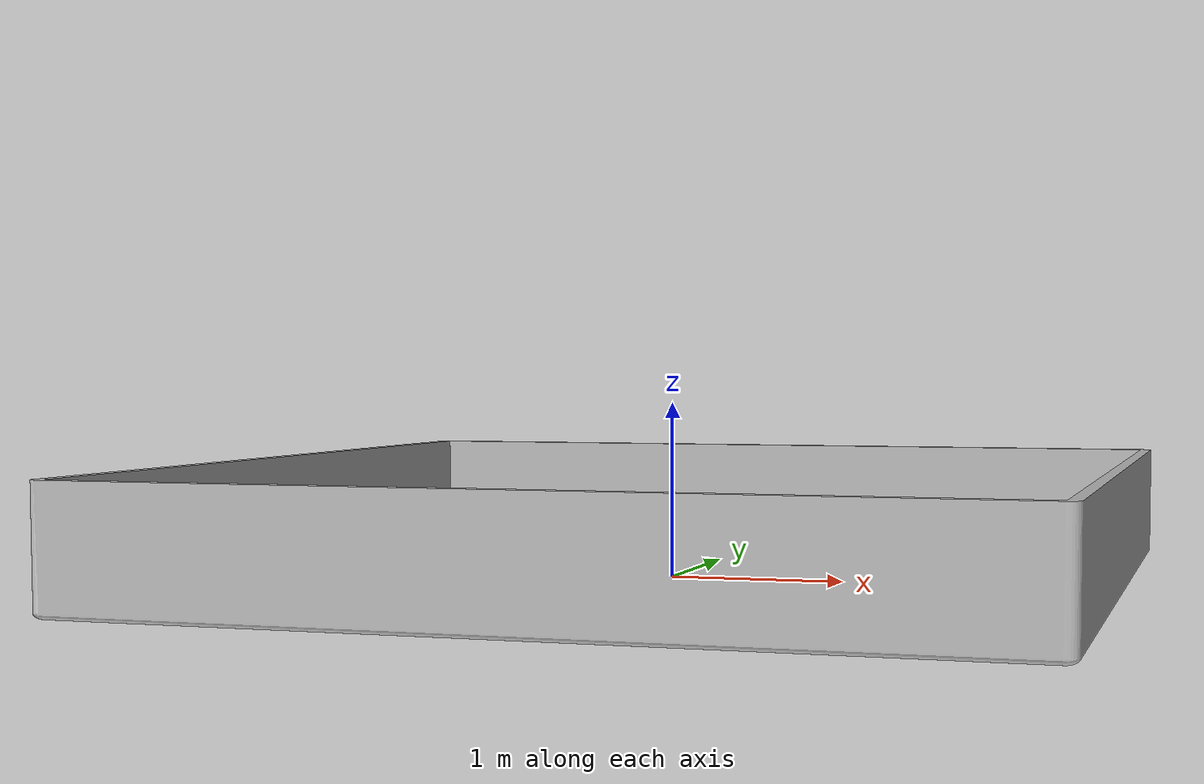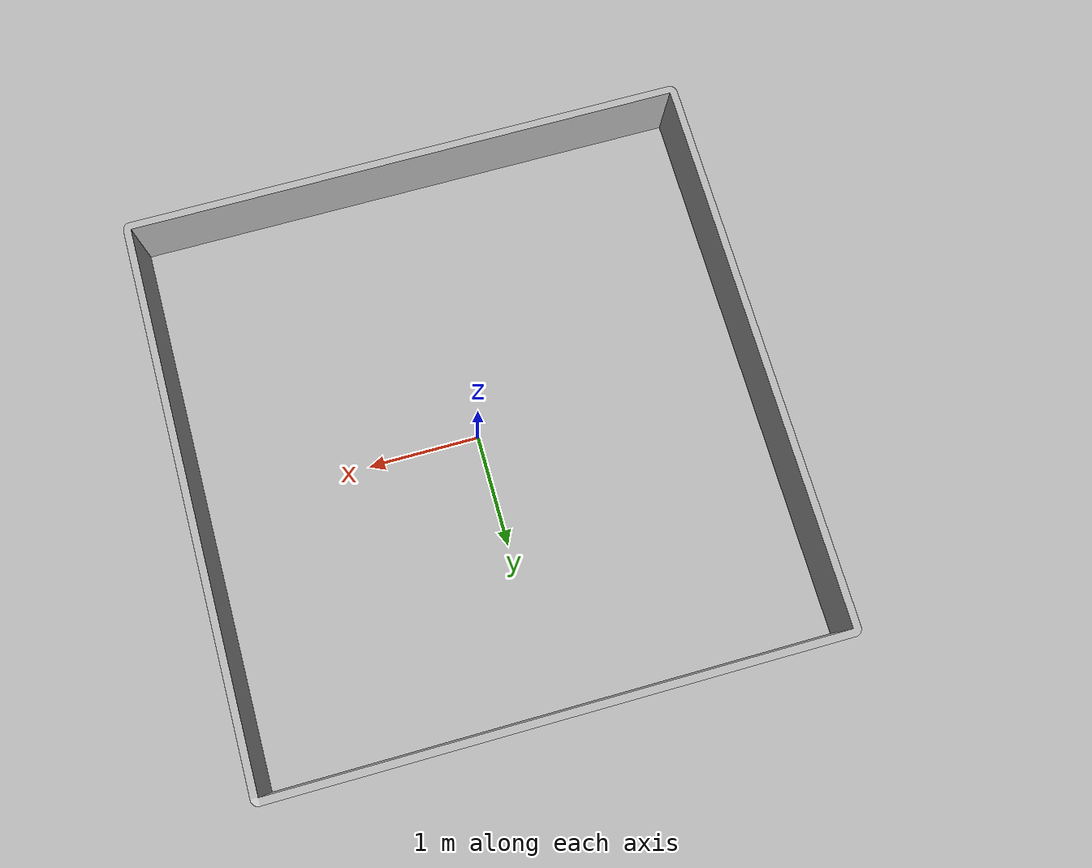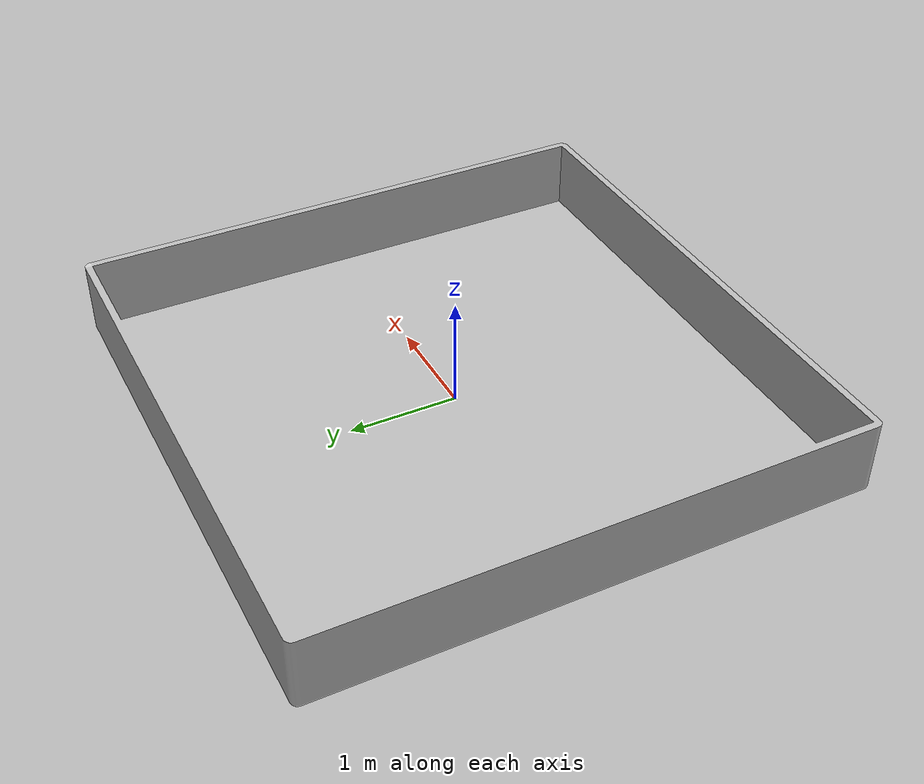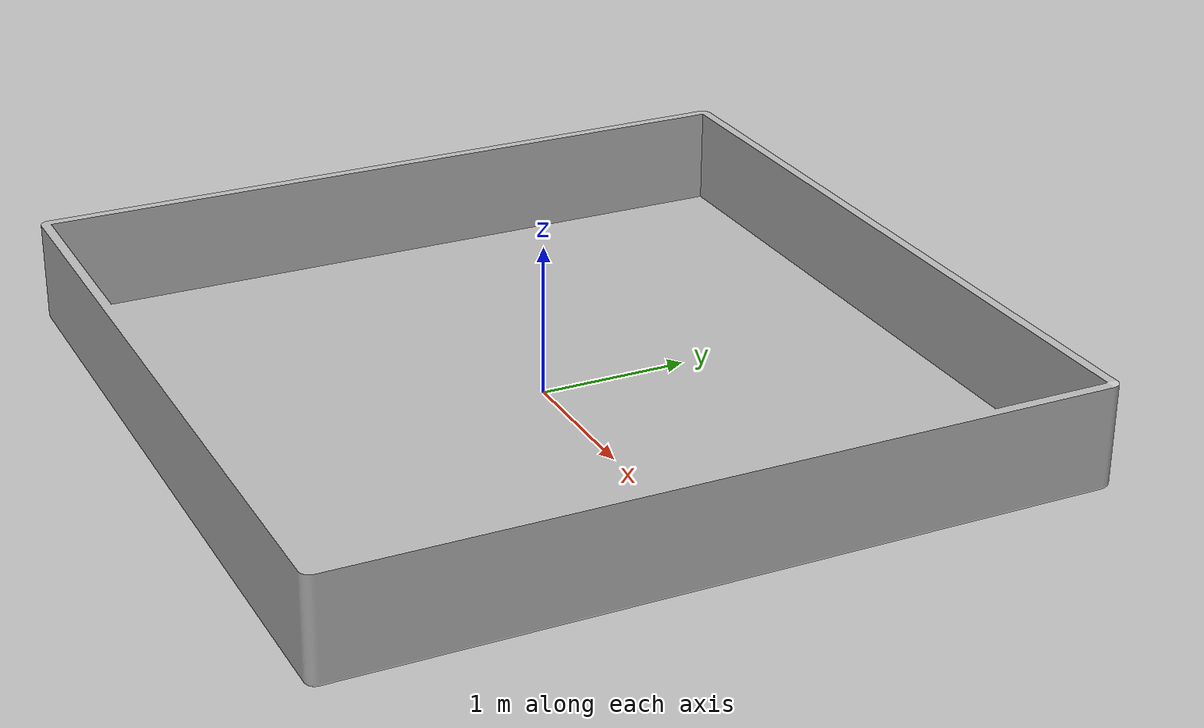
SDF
<?xml version='1.0'?>
<sdf version='1.4'>
    <model name='world_wall'>
    <static>true</static>

        <link name='link0'>
            <pose>0 0 0 0 0 0</pose>

            <visual name='visual'>
                <geometry>
                    <mesh>
                        <uri>./meshes/world_wall1.dae</uri>
                    </mesh>
                </geometry>
            </visual>

            <collision name='collision'>
                <pose>0 0 -0.025 0 0 0</pose>
                <geometry>
                    <box>
                        <size>5 5 0.05</size>
                    </box>
                </geometry>
            </collision>

        </link>

    </model>

</sdf>
